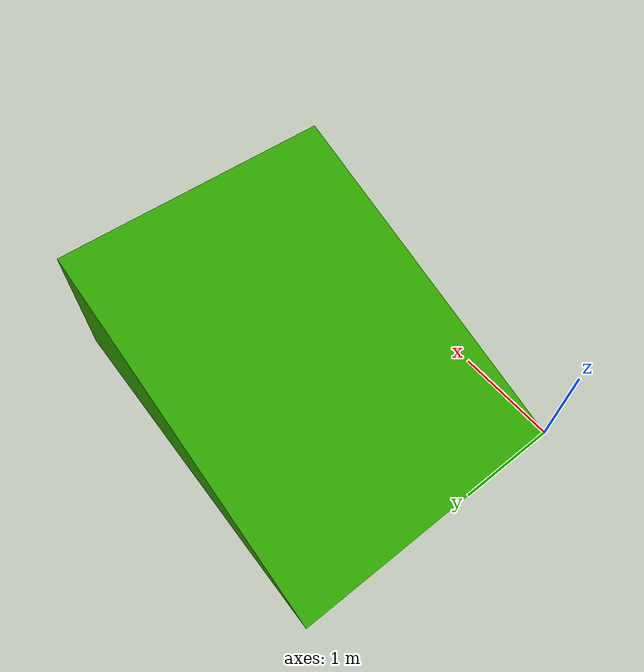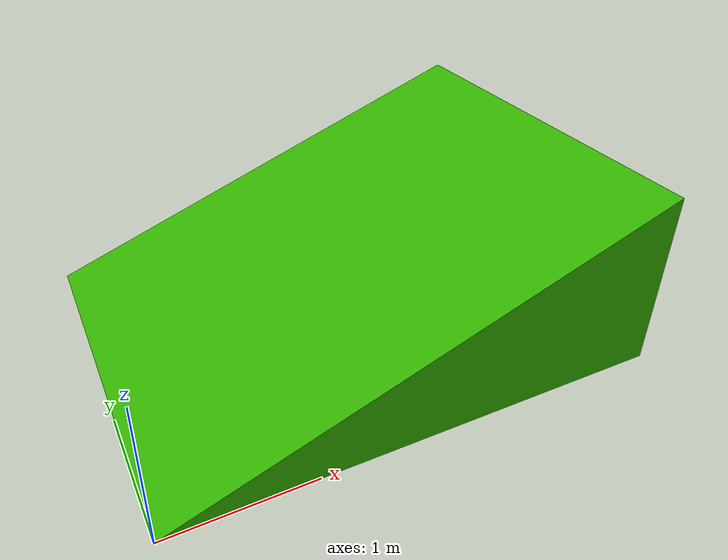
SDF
<?xml version="1.0" ?>
<sdf version="1.5">
  <model name="ramp">
    <link name="ramp">
        <visual name="visual">
        <material>
            <ambient>0.2 0.7 0 0.9</ambient>
            <diffuse>0.2 0.7 0 0.9</diffuse>
            <specular>1 1 1 0.9</specular>
        </material>
          <geometry>
            <mesh><uri>meshes/ramp.stl</uri></mesh>
          </geometry>
        </visual>
        <collision name="collision">
          <geometry>
            <mesh><uri>meshes/ramp.stl</uri></mesh>
          </geometry>
          <surface>
            <friction>
              <ode>
                <mu>10000</mu>
                <mu2>10000</mu2>
                <slip1>0.000000</slip1>
                <slip2>0.000000</slip2>
              </ode>
            </friction>
          </surface>
        </collision>
      </link>
    </model>
</sdf>
